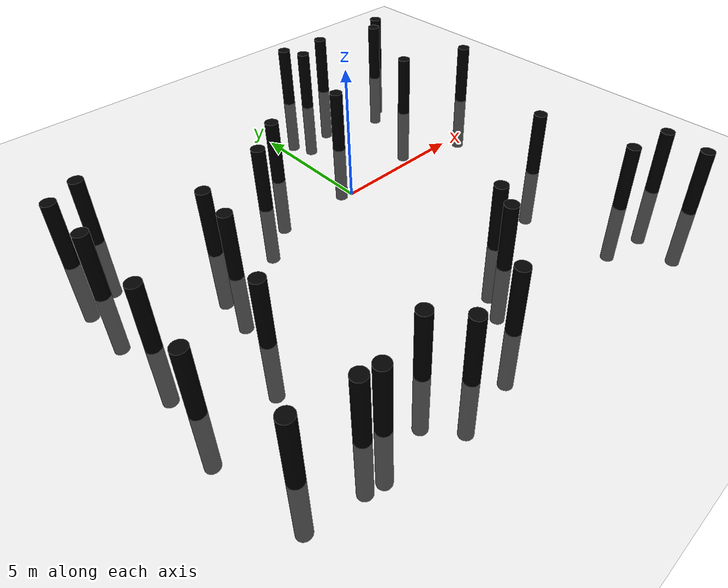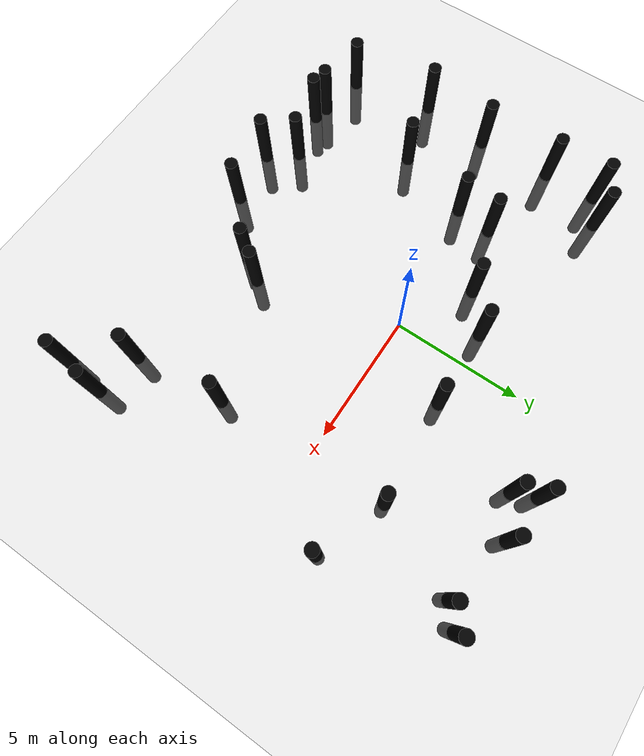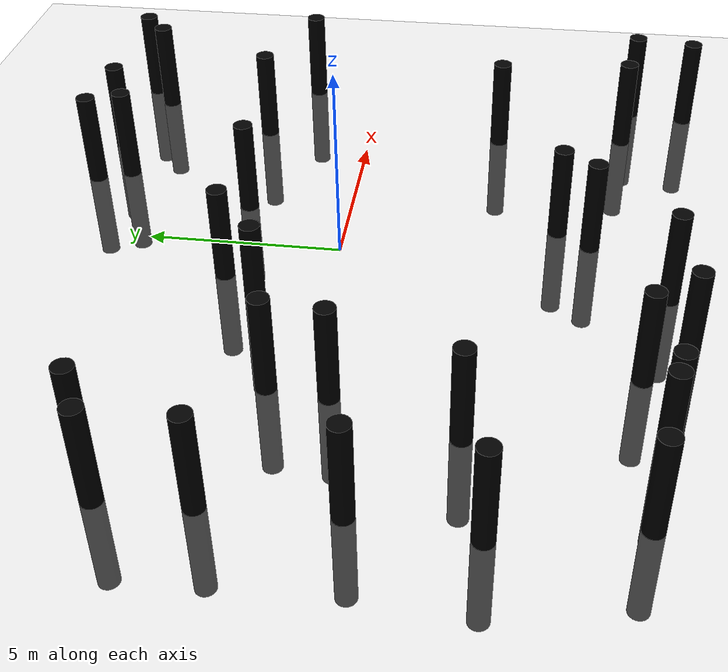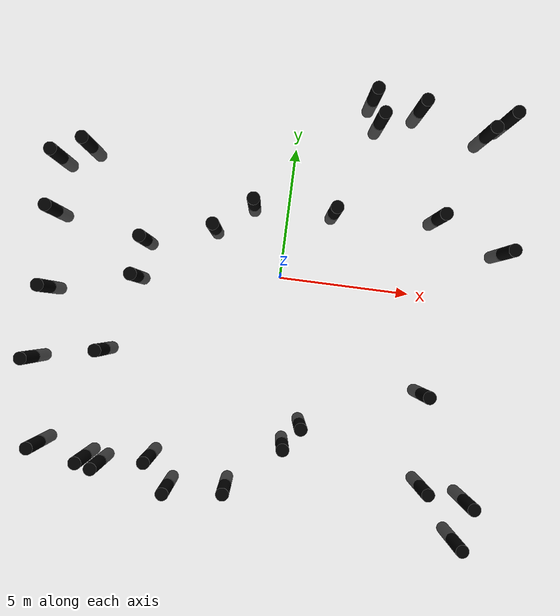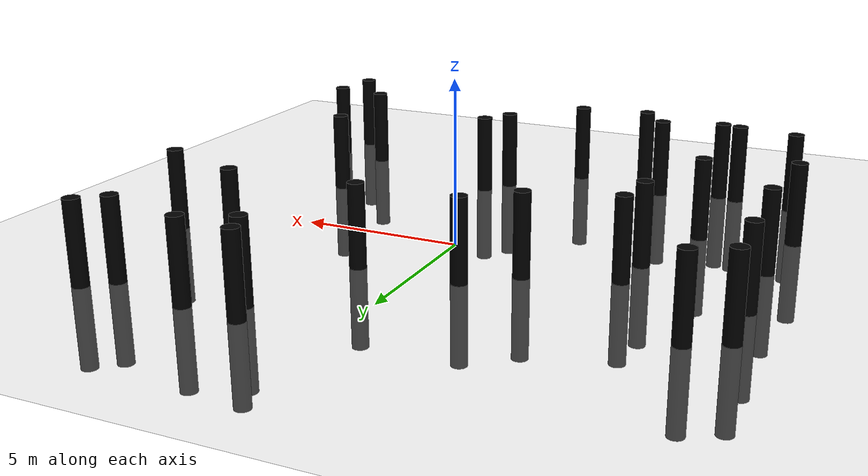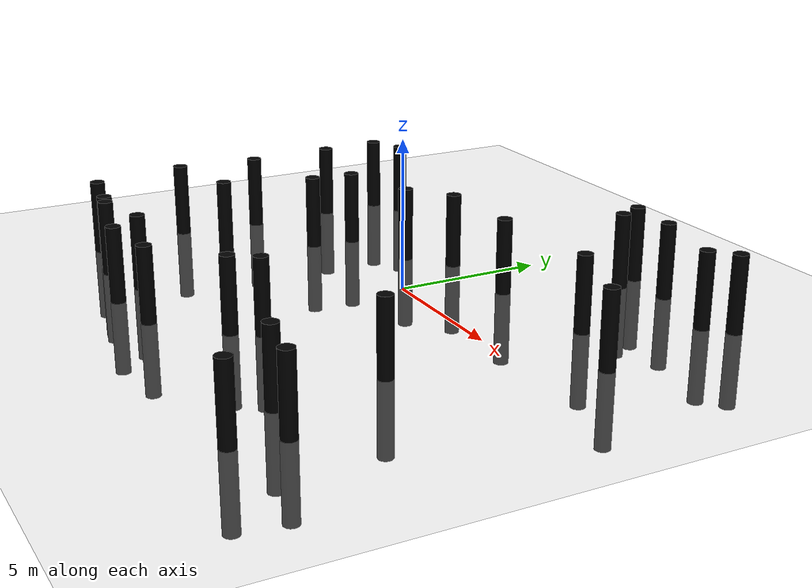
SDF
<?xml version="1.0"?>

<sdf version="1.6">
    <world name="world_medium_density">
        <gravity>0 0 0</gravity>
        <physics name="4ms" type="ignored">
            <max_step_size>0.004</max_step_size>
            <real_time_factor>1.0</real_time_factor>
        </physics>
        <plugin
            filename="ignition-gazebo-physics-system"
            name="ignition::gazebo::systems::Physics">
        </plugin>
        <plugin
            filename="ignition-gazebo-scene-broadcaster-system"
            name="ignition::gazebo::systems::SceneBroadcaster">
        </plugin>
        <plugin
            filename="ignition-gazebo-user-commands-system"
            name="ignition::gazebo::systems::UserCommands">
        </plugin>
        <plugin
            filename="ignition-gazebo-sensors-system"
            name="ignition::gazebo::systems::Sensors">
            <render_engine>ogre2</render_engine>
        </plugin>

        <include>
            <uri>model://ground_plane</uri>
        </include>
        <include>
            <uri>model://pole</uri>
            <name>pole1</name>
            <pose>1.48 -5.54 0 0 0 0</pose>
        </include>
        <include>
            <uri>model://pole</uri>
            <name>pole2</name>
            <pose>-6.43 -3.64 0 0 0 0</pose>
        </include>
        <include>
            <uri>model://pole</uri>
            <name>pole3</name>
            <pose>-9.11 -4.28 0 0 0 0</pose>
        </include>
        <include>
            <uri>model://pole</uri>
            <name>pole4</name>
            <pose>7.96 -9.22 0 0 0 0</pose>
        </include>
        <include>
            <uri>model://pole</uri>
            <name>pole5</name>
            <pose>7.21 6.45 0 0 0 0</pose>
        </include>
        <include>
            <uri>model://pole</uri>
            <name>pole6</name>
            <pose>-9.01 3.53 0 0 0 0</pose>
        </include>
        <include>
            <uri>model://pole</uri>
            <name>pole7</name>
            <pose>-6.62 -7.85 0 0 0 0</pose>
        </include>
        <include>
            <uri>model://pole</uri>
            <name>pole8</name>
            <pose>-8.46 -7.54 0 0 0 0</pose>
        </include>
        <include>
            <uri>model://pole</uri>
            <name>pole9</name>
            <pose>-8.84 -1.51 0 0 0 0</pose>
        </include>
        <include>
            <uri>model://pole</uri>
            <name>pole10</name>
            <pose>0.91 -6.38 0 0 0 0</pose>
        </include>
        <include>
            <uri>model://pole</uri>
            <name>pole11</name>
            <pose>4.55 7.11 0 0 0 0</pose>
        </include>
        <include>
            <uri>model://pole</uri>
            <name>pole12</name>
            <pose>-5.5 -0.66 0 0 0 0</pose>
        </include>
        <include>
            <uri>model://pole</uri>
            <name>pole13</name>
            <pose>6.44 -7.33 0 0 0 0</pose>
        </include>
        <include>
            <uri>model://pole</uri>
            <name>pole14</name>
            <pose>6.04 -3.77 0 0 0 0</pose>
        </include>
        <include>
            <uri>model://pole</uri>
            <name>pole15</name>
            <pose>-3.29 -8.56 0 0 0 0</pose>
        </include>
        <include>
            <uri>model://pole</uri>
            <name>pole16</name>
            <pose>-6.03 -7.99 0 0 0 0</pose>
        </include>
        <include>
            <uri>model://pole</uri>
            <name>pole17</name>
            <pose>-7.91 4.1 0 0 0 0</pose>
        </include>
        <include>
            <uri>model://pole</uri>
            <name>pole18</name>
            <pose>5.78 3.04 0 0 0 0</pose>
        </include>
        <include>
            <uri>model://pole</uri>
            <name>pole19</name>
            <pose>-2.73 1.57 0 0 0 0</pose>
        </include>
        <include>
            <uri>model://pole</uri>
            <name>pole20</name>
            <pose>7.94 7.1 0 0 0 0</pose>
        </include>
        <include>
            <uri>model://pole</uri>
            <name>pole21</name>
            <pose>-8.94 1.46 0 0 0 0</pose>
        </include>
        <include>
            <uri>model://pole</uri>
            <name>pole22</name>
            <pose>-5.35 0.78 0 0 0 0</pose>
        </include>
        <include>
            <uri>model://pole</uri>
            <name>pole23</name>
            <pose>8.2 -7.65 0 0 0 0</pose>
        </include>
        <include>
            <uri>model://pole</uri>
            <name>pole24</name>
            <pose>-1.08 -8.28 0 0 0 0</pose>
        </include>
        <include>
            <uri>model://pole</uri>
            <name>pole25</name>
            <pose>8.46 2.03 0 0 0 0</pose>
        </include>
        <include>
            <uri>model://pole</uri>
            <name>pole26</name>
            <pose>2.7 7.31 0 0 0 0</pose>
        </include>
        <include>
            <uri>model://pole</uri>
            <name>pole27</name>
            <pose>-1.35 2.68 0 0 0 0</pose>
        </include>
        <include>
            <uri>model://pole</uri>
            <name>pole28</name>
            <pose>3.07 6.45 0 0 0 0</pose>
        </include>
        <include>
            <uri>model://pole</uri>
            <name>pole29</name>
            <pose>-4.12 -7.51 0 0 0 0</pose>
        </include>
        <include>
            <uri>model://pole</uri>
            <name>pole30</name>
            <pose>1.76 2.76 0 0 0 0</pose>
        </include>

    </world>
</sdf>

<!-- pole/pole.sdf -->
<sdf version="1.9">
    <model name="pole">
        <link name="pole_link">

            <visual name='visual'>
                <geometry>
                    <cylinder>
                        <radius>0.25</radius>
                        <length>5.0</length>
                    </cylinder>
                </geometry>
                <material>
                    <diffuse>0 0 0 1</diffuse>
                </material>
            </visual>

            <inertial>
                <mass>0.005</mass>
                <inertia>
                    <ixx>8.33e-06</ixx>
                    <ixy>0</ixy>
                    <ixz>0</ixz>
                    <iyy>8.33e-06</iyy>
                    <iyz>0</iyz>
                    <izz>8.33e-06</izz>
                </inertia>
            </inertial>

        </link>
        <frame name="mount_point"/>

        <joint name="world_to_base_link=" type="fixed">
            <parent>world</parent>
            <child>pole_link</child>
        </joint>
    </model>
</sdf>
